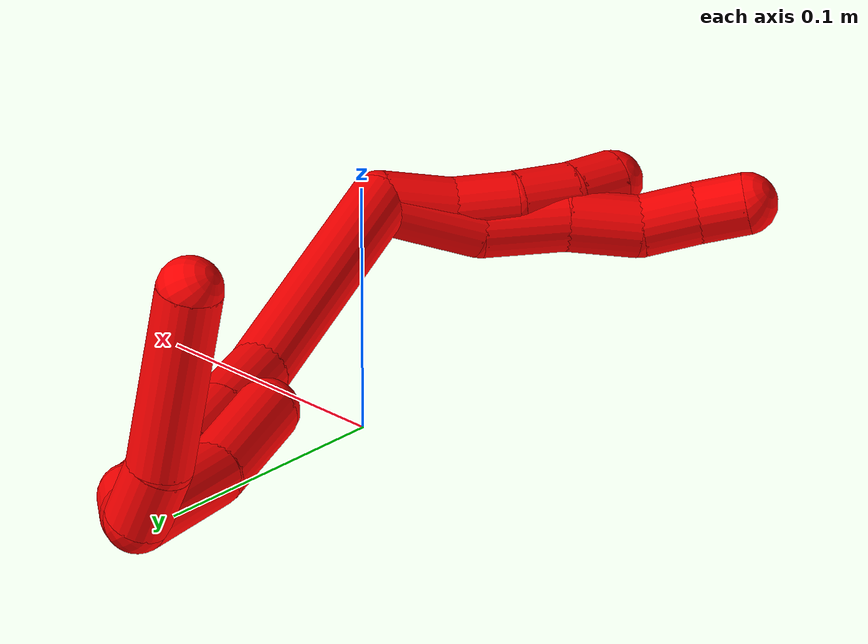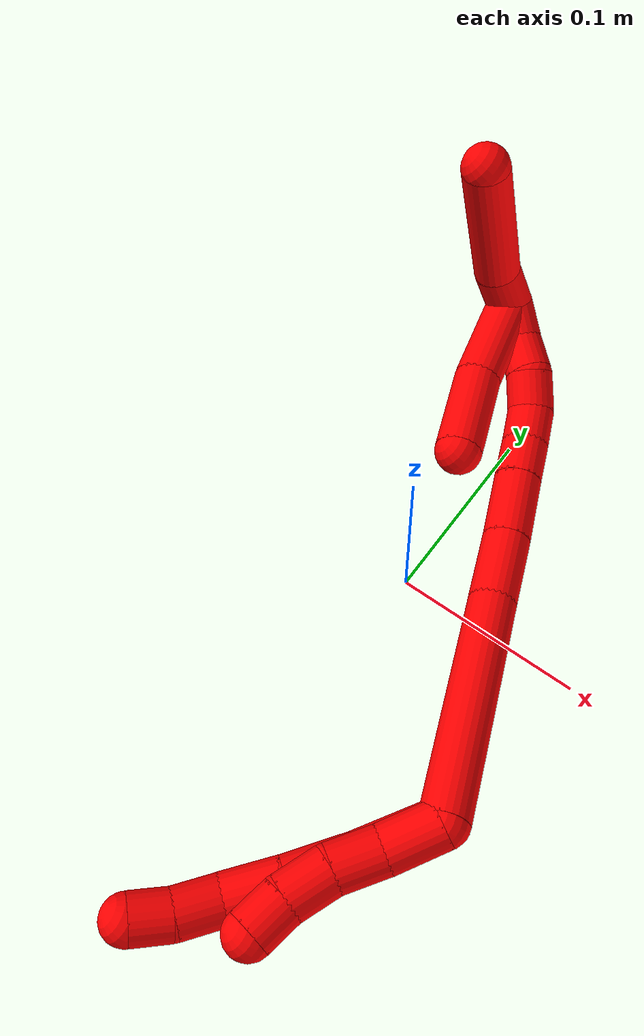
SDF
<sdf version="1.7">
 <world name="default">
  <model name="photoneo_s_sensor">
   <static>1</static>
   <pose>0 0 2 1.57079 1.57079 3.14159</pose>
   <link name="link">
    <inertial><mass>0.1</mass></inertial>
    <sensor name="sensor" type="depth">
     <update_rate>30</update_rate>
     <camera>
      <horizontal_fov>1.22</horizontal_fov>
      <image><width>1920</width><height>1200</height><format>B8G8R8</format></image>
      <clip><near>0.1</near><far>4</far></clip>
      <depth_camera><output>points</output></depth_camera>
     </camera>
     <plugin name="camera_plugin" filename="libgazebo_ros_depth_camera.so">
      <baseline>0.2</baseline>
      <alwaysOn>1</alwaysOn>
      <updateRate>0.0</updateRate>
      <cameraName>camera_ir</cameraName>
      <imageTopicName>/camera/color/image_raw</imageTopicName>
      <cameraInfoTopicName>/camera/color/camera_info</cameraInfoTopicName>
      <depthImageTopicName>/camera/depth/image_raw</depthImageTopicName>
      <depthImageCameraInfoTopicName>/camera/depth/camera_info</depthImageCameraInfoTopicName>
      <pointCloudTopicName>/camera/depth/points</pointCloudTopicName>
      <frameName>fr_optical</frameName>
      <pointCloudCutoff>0.1</pointCloudCutoff>
      <pointCloudCutoffMax>2.0</pointCloudCutoffMax>
      <distortionK1>0</distortionK1>
      <distortionK2>0</distortionK2>
      <distortionK3>0</distortionK3>
      <distortionT1>0</distortionT1>
      <distortionT2>0</distortionT2>
      <CxPrime>0</CxPrime>
      <Cx>0</Cx>
      <Cy>0</Cy>
      <focalLength>0</focalLength>
      <hackBaseline>0</hackBaseline>
     </plugin>
    </sensor>
   </link>
  </model>
  <model name="bin">
   <static>1</static>
   <link name="bottom">
    <collision name="collision-bottom">
     <pose>0 0 -0.01 0 -0 0</pose>
     <geometry><box><size>0.8 0.6 0.02</size></box></geometry>
     <surface>
      <friction><ode><mu>100</mu><mu2>100</mu2></ode></friction>
      <contact><collide_bitmask>65535</collide_bitmask></contact>
     </surface>
    </collision>
   </link>
   <link name="west_wall">
    <collision name="collision-west_wall">
     <pose>-0.41 0 0.1 0 -0 0</pose>
     <geometry><box><size>0.02 0.6 0.2</size></box></geometry>
     <surface>
      <friction><ode><mu>100</mu><mu2>100</mu2></ode></friction>
      <contact><collide_bitmask>65535</collide_bitmask></contact>
     </surface>
    </collision>
   </link>
   <link name="east_wall">
    <collision name="collision-east_wall">
     <pose>0.41 0 0.1 0 -0 0</pose>
     <geometry><box><size>0.02 0.6 0.2</size></box></geometry>
     <surface>
      <friction><ode><mu>100</mu><mu2>100</mu2></ode></friction>
      <contact><collide_bitmask>65535</collide_bitmask></contact>
     </surface>
    </collision>
   </link>
   <link name="south_wall">
    <collision name="collision-south_wall">
     <pose>0 -0.31 0.1 0 -0 0</pose>
     <geometry><box><size>0.8 0.02 0.2</size></box></geometry>
     <surface>
      <friction><ode><mu>100</mu><mu2>100</mu2></ode></friction>
      <contact><collide_bitmask>65535</collide_bitmask></contact>
     </surface>
    </collision>
   </link>
   <link name="north_wall">
    <collision name="collision-north_wall">
     <pose>0 0.31 0.1 0 -0 0</pose>
     <geometry><box><size>0.8 0.02 0.2</size></box></geometry>
     <surface>
      <friction><ode><mu>100</mu><mu2>100</mu2></ode></friction>
      <contact><collide_bitmask>65535</collide_bitmask></contact>
     </surface>
    </collision>
   </link>
  </model>
  <model name="2">
   <static>0</static>
   <link name="2">
    <collision name="collision-cylinder-e_1_2_8">
     <pose>-0.001607 -0.019561 0.008418 1.16441 -0.075303 -0.049587</pose>
     <geometry><cylinder><radius>0.0125</radius><length>0.042712</length></cylinder></geometry>
     <surface>
      <friction><ode><mu>1.16</mu><mu2>1.16</mu2><slip1>0</slip1><slip2>0</slip2></ode></friction>
      <contact><ode><kp>1e+06</kp><kd>1</kd><max_vel>0</max_vel><min_depth>0.001</min_depth></ode></contact>
     </surface>
    </collision>
    <visual name="visual-cylinder-e_1_2_8">
     <pose>-0.001607 -0.019561 0.008418 1.16441 -0.075303 -0.049587</pose>
     <geometry><cylinder><radius>0.0125</radius><length>0.042712</length></cylinder></geometry>
     <material><ambient>1 0 0 1</ambient></material>
    </visual>
    <collision name="collision-cylinder-e_2_8_9">
     <pose>-0.001496 -0.052231 0.027694 0.87905 0.100563 0.047316</pose>
     <geometry><cylinder><radius>0.0125</radius><length>0.034217</length></cylinder></geometry>
     <surface>
      <friction><ode><mu>1.16</mu><mu2>1.16</mu2><slip1>0</slip1><slip2>0</slip2></ode></friction>
      <contact><ode><kp>1e+06</kp><kd>1</kd><max_vel>0</max_vel><min_depth>0.001</min_depth></ode></contact>
     </surface>
    </collision>
    <visual name="visual-cylinder-e_2_8_9">
     <pose>-0.001496 -0.052231 0.027694 0.87905 0.100563 0.047316</pose>
     <geometry><cylinder><radius>0.0125</radius><length>0.034217</length></cylinder></geometry>
     <material><ambient>1 0 0 1</ambient></material>
    </visual>
    <collision name="collision-cylinder-e_3_9_10">
     <pose>-0.000375 -0.077344 0.046924 0.961768 -0.040763 -0.021269</pose>
     <geometry><cylinder><radius>0.0125</radius><length>0.029295</length></cylinder></geometry>
     <surface>
      <friction><ode><mu>1.16</mu><mu2>1.16</mu2><slip1>0</slip1><slip2>0</slip2></ode></friction>
      <contact><ode><kp>1e+06</kp><kd>1</kd><max_vel>0</max_vel><min_depth>0.001</min_depth></ode></contact>
     </surface>
    </collision>
    <visual name="visual-cylinder-e_3_9_10">
     <pose>-0.000375 -0.077344 0.046924 0.961768 -0.040763 -0.021269</pose>
     <geometry><cylinder><radius>0.0125</radius><length>0.029295</length></cylinder></geometry>
     <material><ambient>1 0 0 1</ambient></material>
    </visual>
    <collision name="collision-cylinder-e_4_10_11">
     <pose>0.001192 -0.097153 0.063892 0.737203 0.184291 0.071355</pose>
     <geometry><cylinder><radius>0.0125</radius><length>0.02362</length></cylinder></geometry>
     <surface>
      <friction><ode><mu>1.16</mu><mu2>1.16</mu2><slip1>0</slip1><slip2>0</slip2></ode></friction>
      <contact><ode><kp>1e+06</kp><kd>1</kd><max_vel>0</max_vel><min_depth>0.001</min_depth></ode></contact>
     </surface>
    </collision>
    <visual name="visual-cylinder-e_4_10_11">
     <pose>0.001192 -0.097153 0.063892 0.737203 0.184291 0.071355</pose>
     <geometry><cylinder><radius>0.0125</radius><length>0.02362</length></cylinder></geometry>
     <material><ambient>1 0 0 1</ambient></material>
    </visual>
    <collision name="collision-cylinder-e_5_11_6">
     <pose>0.003896 -0.110737 0.080727 0.611723 0.05351 0.0169</pose>
     <geometry><cylinder><radius>0.0125</radius><length>0.020156</length></cylinder></geometry>
     <surface>
      <friction><ode><mu>1.16</mu><mu2>1.16</mu2><slip1>0</slip1><slip2>0</slip2></ode></friction>
      <contact><ode><kp>1e+06</kp><kd>1</kd><max_vel>0</max_vel><min_depth>0.001</min_depth></ode></contact>
     </surface>
    </collision>
    <visual name="visual-cylinder-e_5_11_6">
     <pose>0.003896 -0.110737 0.080727 0.611723 0.05351 0.0169</pose>
     <geometry><cylinder><radius>0.0125</radius><length>0.020156</length></cylinder></geometry>
     <material><ambient>1 0 0 1</ambient></material>
    </visual>
    <collision name="collision-cylinder-e_1_2_12">
     <pose>0.000642 -0.013163 0.00691 1.08735 0.043149 0.026083</pose>
     <geometry><cylinder><radius>0.0125</radius><length>0.029761</length></cylinder></geometry>
     <surface>
      <friction><ode><mu>1.16</mu><mu2>1.16</mu2><slip1>0</slip1><slip2>0</slip2></ode></friction>
      <contact><ode><kp>1e+06</kp><kd>1</kd><max_vel>0</max_vel><min_depth>0.001</min_depth></ode></contact>
     </surface>
    </collision>
    <visual name="visual-cylinder-e_1_2_12">
     <pose>0.000642 -0.013163 0.00691 1.08735 0.043149 0.026083</pose>
     <geometry><cylinder><radius>0.0125</radius><length>0.029761</length></cylinder></geometry>
     <material><ambient>1 0 0 1</ambient></material>
    </visual>
    <collision name="collision-cylinder-e_2_12_13">
     <pose>0.002982 -0.036089 0.021792 0.886099 0.133955 0.063637</pose>
     <geometry><cylinder><radius>0.0125</radius><length>0.025436</length></cylinder></geometry>
     <surface>
      <friction><ode><mu>1.16</mu><mu2>1.16</mu2><slip1>0</slip1><slip2>0</slip2></ode></friction>
      <contact><ode><kp>1e+06</kp><kd>1</kd><max_vel>0</max_vel><min_depth>0.001</min_depth></ode></contact>
     </surface>
    </collision>
    <visual name="visual-cylinder-e_2_12_13">
     <pose>0.002982 -0.036089 0.021792 0.886099 0.133955 0.063637</pose>
     <geometry><cylinder><radius>0.0125</radius><length>0.025436</length></cylinder></geometry>
     <material><ambient>1 0 0 1</ambient></material>
    </visual>
    <collision name="collision-cylinder-e_3_13_14">
     <pose>0.008136 -0.055733 0.03561 1.03651 0.29235 0.167516</pose>
     <geometry><cylinder><radius>0.0125</radius><length>0.02398</length></cylinder></geometry>
     <surface>
      <friction><ode><mu>1.16</mu><mu2>1.16</mu2><slip1>0</slip1><slip2>0</slip2></ode></friction>
      <contact><ode><kp>1e+06</kp><kd>1</kd><max_vel>0</max_vel><min_depth>0.001</min_depth></ode></contact>
     </surface>
    </collision>
    <visual name="visual-cylinder-e_3_13_14">
     <pose>0.008136 -0.055733 0.03561 1.03651 0.29235 0.167516</pose>
     <geometry><cylinder><radius>0.0125</radius><length>0.02398</length></cylinder></geometry>
     <material><ambient>1 0 0 1</ambient></material>
    </visual>
    <collision name="collision-cylinder-e_4_14_5">
     <pose>0.016338 -0.074055 0.045282 1.14529 0.473337 0.308521</pose>
     <geometry><cylinder><radius>0.0125</radius><length>0.020823</length></cylinder></geometry>
     <surface>
      <friction><ode><mu>1.16</mu><mu2>1.16</mu2><slip1>0</slip1><slip2>0</slip2></ode></friction>
      <contact><ode><kp>1e+06</kp><kd>1</kd><max_vel>0</max_vel><min_depth>0.001</min_depth></ode></contact>
     </surface>
    </collision>
    <visual name="visual-cylinder-e_4_14_5">
     <pose>0.016338 -0.074055 0.045282 1.14529 0.473337 0.308521</pose>
     <geometry><cylinder><radius>0.0125</radius><length>0.020823</length></cylinder></geometry>
     <material><ambient>1 0 0 1</ambient></material>
    </visual>
    <collision name="collision-cylinder-e_1_2_15">
     <pose>-0.051708 0.031954 -0.004047 -1.69677 -1.01371 1.12435</pose>
     <geometry><cylinder><radius>0.0125</radius><length>0.121838</length></cylinder></geometry>
     <surface>
      <friction><ode><mu>1.16</mu><mu2>1.16</mu2><slip1>0</slip1><slip2>0</slip2></ode></friction>
      <contact><ode><kp>1e+06</kp><kd>1</kd><max_vel>0</max_vel><min_depth>0.001</min_depth></ode></contact>
     </surface>
    </collision>
    <visual name="visual-cylinder-e_1_2_15">
     <pose>-0.051708 0.031954 -0.004047 -1.69677 -1.01371 1.12435</pose>
     <geometry><cylinder><radius>0.0125</radius><length>0.121838</length></cylinder></geometry>
     <material><ambient>1 0 0 1</ambient></material>
    </visual>
    <collision name="collision-cylinder-e_2_15_16">
     <pose>-0.118002 0.075499 -0.007624 -1.53033 -0.89891 0.867633</pose>
     <geometry><cylinder><radius>0.0125</radius><length>0.037276</length></cylinder></geometry>
     <surface>
      <friction><ode><mu>1.16</mu><mu2>1.16</mu2><slip1>0</slip1><slip2>0</slip2></ode></friction>
      <contact><ode><kp>1e+06</kp><kd>1</kd><max_vel>0</max_vel><min_depth>0.001</min_depth></ode></contact>
     </surface>
    </collision>
    <visual name="visual-cylinder-e_2_15_16">
     <pose>-0.118002 0.075499 -0.007624 -1.53033 -0.89891 0.867633</pose>
     <geometry><cylinder><radius>0.0125</radius><length>0.037276</length></cylinder></geometry>
     <material><ambient>1 0 0 1</ambient></material>
    </visual>
    <collision name="collision-cylinder-e_3_16_17">
     <pose>-0.146626 0.09827 -0.006005 -1.46828 -0.895691 0.818123</pose>
     <geometry><cylinder><radius>0.0125</radius><length>0.035962</length></cylinder></geometry>
     <surface>
      <friction><ode><mu>1.16</mu><mu2>1.16</mu2><slip1>0</slip1><slip2>0</slip2></ode></friction>
      <contact><ode><kp>1e+06</kp><kd>1</kd><max_vel>0</max_vel><min_depth>0.001</min_depth></ode></contact>
     </surface>
    </collision>
    <visual name="visual-cylinder-e_3_16_17">
     <pose>-0.146626 0.09827 -0.006005 -1.46828 -0.895691 0.818123</pose>
     <geometry><cylinder><radius>0.0125</radius><length>0.035962</length></cylinder></geometry>
     <material><ambient>1 0 0 1</ambient></material>
    </visual>
    <collision name="collision-cylinder-e_4_17_18">
     <pose>-0.169441 0.116522 -0.004281 -1.48992 -0.890958 0.829609</pose>
     <geometry><cylinder><radius>0.0125</radius><length>0.022574</length></cylinder></geometry>
     <surface>
      <friction><ode><mu>1.16</mu><mu2>1.16</mu2><slip1>0</slip1><slip2>0</slip2></ode></friction>
      <contact><ode><kp>1e+06</kp><kd>1</kd><max_vel>0</max_vel><min_depth>0.001</min_depth></ode></contact>
     </surface>
    </collision>
    <visual name="visual-cylinder-e_4_17_18">
     <pose>-0.169441 0.116522 -0.004281 -1.48992 -0.890958 0.829609</pose>
     <geometry><cylinder><radius>0.0125</radius><length>0.022574</length></cylinder></geometry>
     <material><ambient>1 0 0 1</ambient></material>
    </visual>
    <collision name="collision-cylinder-e_5_18_19">
     <pose>-0.185245 0.130526 -0.002013 -1.33094 -0.777671 0.622259</pose>
     <geometry><cylinder><radius>0.0125</radius><length>0.02003</length></cylinder></geometry>
     <surface>
      <friction><ode><mu>1.16</mu><mu2>1.16</mu2><slip1>0</slip1><slip2>0</slip2></ode></friction>
      <contact><ode><kp>1e+06</kp><kd>1</kd><max_vel>0</max_vel><min_depth>0.001</min_depth></ode></contact>
     </surface>
    </collision>
    <visual name="visual-cylinder-e_5_18_19">
     <pose>-0.185245 0.130526 -0.002013 -1.33094 -0.777671 0.622259</pose>
     <geometry><cylinder><radius>0.0125</radius><length>0.02003</length></cylinder></geometry>
     <material><ambient>1 0 0 1</ambient></material>
    </visual>
    <collision name="collision-cylinder-e_6_19_20">
     <pose>-0.198359 0.144152 0.004599 -0.937304 -0.632465 0.328335</pose>
     <geometry><cylinder><radius>0.0125</radius><length>0.020595</length></cylinder></geometry>
     <surface>
      <friction><ode><mu>1.16</mu><mu2>1.16</mu2><slip1>0</slip1><slip2>0</slip2></ode></friction>
      <contact><ode><kp>1e+06</kp><kd>1</kd><max_vel>0</max_vel><min_depth>0.001</min_depth></ode></contact>
     </surface>
    </collision>
    <visual name="visual-cylinder-e_6_19_20">
     <pose>-0.198359 0.144152 0.004599 -0.937304 -0.632465 0.328335</pose>
     <geometry><cylinder><radius>0.0125</radius><length>0.020595</length></cylinder></geometry>
     <material><ambient>1 0 0 1</ambient></material>
    </visual>
    <collision name="collision-cylinder-e_7_20_21">
     <pose>-0.212546 0.154779 0.014173 -0.701271 -0.925662 0.36103</pose>
     <geometry><cylinder><radius>0.0125</radius><length>0.020273</length></cylinder></geometry>
     <surface>
      <friction><ode><mu>1.16</mu><mu2>1.16</mu2><slip1>0</slip1><slip2>0</slip2></ode></friction>
      <contact><ode><kp>1e+06</kp><kd>1</kd><max_vel>0</max_vel><min_depth>0.001</min_depth></ode></contact>
     </surface>
    </collision>
    <visual name="visual-cylinder-e_7_20_21">
     <pose>-0.212546 0.154779 0.014173 -0.701271 -0.925662 0.36103</pose>
     <geometry><cylinder><radius>0.0125</radius><length>0.020273</length></cylinder></geometry>
     <material><ambient>1 0 0 1</ambient></material>
    </visual>
    <collision name="collision-cylinder-e_8_21_1">
     <pose>-0.227107 0.164252 0.025357 -0.70378 -0.64654 0.244792</pose>
     <geometry><cylinder><radius>0.0125</radius><length>0.021451</length></cylinder></geometry>
     <surface>
      <friction><ode><mu>1.16</mu><mu2>1.16</mu2><slip1>0</slip1><slip2>0</slip2></ode></friction>
      <contact><ode><kp>1e+06</kp><kd>1</kd><max_vel>0</max_vel><min_depth>0.001</min_depth></ode></contact>
     </surface>
    </collision>
    <visual name="visual-cylinder-e_8_21_1">
     <pose>-0.227107 0.164252 0.025357 -0.70378 -0.64654 0.244792</pose>
     <geometry><cylinder><radius>0.0125</radius><length>0.021451</length></cylinder></geometry>
     <material><ambient>1 0 0 1</ambient></material>
    </visual>
    <collision name="collision-cylinder-e_1_1_22">
     <pose>-0.216395 0.151069 0.032842 1.51961 0.741597 0.707661</pose>
     <geometry><cylinder><radius>0.0125</radius><length>0.050847</length></cylinder></geometry>
     <surface>
      <friction><ode><mu>1.16</mu><mu2>1.16</mu2><slip1>0</slip1><slip2>0</slip2></ode></friction>
      <contact><ode><kp>1e+06</kp><kd>1</kd><max_vel>0</max_vel><min_depth>0.001</min_depth></ode></contact>
     </surface>
    </collision>
    <visual name="visual-cylinder-e_1_1_22">
     <pose>-0.216395 0.151069 0.032842 1.51961 0.741597 0.707661</pose>
     <geometry><cylinder><radius>0.0125</radius><length>0.050847</length></cylinder></geometry>
     <material><ambient>1 0 0 1</ambient></material>
    </visual>
    <collision name="collision-cylinder-e_2_22_4">
     <pose>-0.179421 0.117793 0.034103 1.55009 0.936903 0.920317</pose>
     <geometry><cylinder><radius>0.0125</radius><length>0.049153</length></cylinder></geometry>
     <surface>
      <friction><ode><mu>1.16</mu><mu2>1.16</mu2><slip1>0</slip1><slip2>0</slip2></ode></friction>
      <contact><ode><kp>1e+06</kp><kd>1</kd><max_vel>0</max_vel><min_depth>0.001</min_depth></ode></contact>
     </surface>
    </collision>
    <visual name="visual-cylinder-e_2_22_4">
     <pose>-0.179421 0.117793 0.034103 1.55009 0.936903 0.920317</pose>
     <geometry><cylinder><radius>0.0125</radius><length>0.049153</length></cylinder></geometry>
     <material><ambient>1 0 0 1</ambient></material>
    </visual>
    <collision name="collision-cylinder-e_1_1_23">
     <pose>-0.230152 0.174949 0.043451 -0.419395 0.26344 -0.056379</pose>
     <geometry><cylinder><radius>0.0125</radius><length>0.026237</length></cylinder></geometry>
     <surface>
      <friction><ode><mu>1.16</mu><mu2>1.16</mu2><slip1>0</slip1><slip2>0</slip2></ode></friction>
      <contact><ode><kp>1e+06</kp><kd>1</kd><max_vel>0</max_vel><min_depth>0.001</min_depth></ode></contact>
     </surface>
    </collision>
    <visual name="visual-cylinder-e_1_1_23">
     <pose>-0.230152 0.174949 0.043451 -0.419395 0.26344 -0.056379</pose>
     <geometry><cylinder><radius>0.0125</radius><length>0.026237</length></cylinder></geometry>
     <material><ambient>1 0 0 1</ambient></material>
    </visual>
    <collision name="collision-cylinder-e_2_23_3">
     <pose>-0.210979 0.198214 0.083021 -0.574042 0.441433 -0.132263</pose>
     <geometry><cylinder><radius>0.0125</radius><length>0.073763</length></cylinder></geometry>
     <surface>
      <friction><ode><mu>1.16</mu><mu2>1.16</mu2><slip1>0</slip1><slip2>0</slip2></ode></friction>
      <contact><ode><kp>1e+06</kp><kd>1</kd><max_vel>0</max_vel><min_depth>0.001</min_depth></ode></contact>
     </surface>
    </collision>
    <visual name="visual-cylinder-e_2_23_3">
     <pose>-0.210979 0.198214 0.083021 -0.574042 0.441433 -0.132263</pose>
     <geometry><cylinder><radius>0.0125</radius><length>0.073763</length></cylinder></geometry>
     <material><ambient>1 0 0 1</ambient></material>
    </visual>
    <collision name="collision-sphere-3">
     <pose>-0.195222 0.216322 0.111022 0 -0 0</pose>
     <geometry><sphere><radius>0.0125</radius></sphere></geometry>
     <surface>
      <friction><ode><mu>1.16</mu><mu2>1.16</mu2><slip1>0</slip1><slip2>0</slip2></ode></friction>
      <contact><ode><kp>1e+06</kp><kd>1</kd><max_vel>0</max_vel><min_depth>0.001</min_depth></ode></contact>
     </surface>
    </collision>
    <visual name="visual-sphere-3">
     <pose>-0.195222 0.216322 0.111022 0 -0 0</pose>
     <geometry><sphere><radius>0.0125</radius></sphere></geometry>
     <material><ambient>1 0 0 1</ambient></material>
    </visual>
    <collision name="collision-sphere-23">
     <pose>-0.226736 0.180107 0.05502 0 -0 0</pose>
     <geometry><sphere><radius>0.0125</radius></sphere></geometry>
     <surface>
      <friction><ode><mu>1.16</mu><mu2>1.16</mu2><slip1>0</slip1><slip2>0</slip2></ode></friction>
      <contact><ode><kp>1e+06</kp><kd>1</kd><max_vel>0</max_vel><min_depth>0.001</min_depth></ode></contact>
     </surface>
    </collision>
    <visual name="visual-sphere-23">
     <pose>-0.226736 0.180107 0.05502 0 -0 0</pose>
     <geometry><sphere><radius>0.0125</radius></sphere></geometry>
     <material><ambient>1 0 0 1</ambient></material>
    </visual>
    <collision name="collision-sphere-4">
     <pose>-0.159619 0.10324 0.034404 0 -0 0</pose>
     <geometry><sphere><radius>0.0125</radius></sphere></geometry>
     <surface>
      <friction><ode><mu>1.16</mu><mu2>1.16</mu2><slip1>0</slip1><slip2>0</slip2></ode></friction>
      <contact><ode><kp>1e+06</kp><kd>1</kd><max_vel>0</max_vel><min_depth>0.001</min_depth></ode></contact>
     </surface>
    </collision>
    <visual name="visual-sphere-4">
     <pose>-0.159619 0.10324 0.034404 0 -0 0</pose>
     <geometry><sphere><radius>0.0125</radius></sphere></geometry>
     <material><ambient>1 0 0 1</ambient></material>
    </visual>
    <collision name="collision-sphere-22">
     <pose>-0.199223 0.132346 0.033801 0 -0 0</pose>
     <geometry><sphere><radius>0.0125</radius></sphere></geometry>
     <surface>
      <friction><ode><mu>1.16</mu><mu2>1.16</mu2><slip1>0</slip1><slip2>0</slip2></ode></friction>
      <contact><ode><kp>1e+06</kp><kd>1</kd><max_vel>0</max_vel><min_depth>0.001</min_depth></ode></contact>
     </surface>
    </collision>
    <visual name="visual-sphere-22">
     <pose>-0.199223 0.132346 0.033801 0 -0 0</pose>
     <geometry><sphere><radius>0.0125</radius></sphere></geometry>
     <material><ambient>1 0 0 1</ambient></material>
    </visual>
    <collision name="collision-sphere-1">
     <pose>-0.233568 0.169791 0.031883 0 -0 0</pose>
     <geometry><sphere><radius>0.0125</radius></sphere></geometry>
     <surface>
      <friction><ode><mu>1.16</mu><mu2>1.16</mu2><slip1>0</slip1><slip2>0</slip2></ode></friction>
      <contact><ode><kp>1e+06</kp><kd>1</kd><max_vel>0</max_vel><min_depth>0.001</min_depth></ode></contact>
     </surface>
    </collision>
    <visual name="visual-sphere-1">
     <pose>-0.233568 0.169791 0.031883 0 -0 0</pose>
     <geometry><sphere><radius>0.0125</radius></sphere></geometry>
     <material><ambient>1 0 0 1</ambient></material>
    </visual>
    <collision name="collision-sphere-21">
     <pose>-0.220646 0.158712 0.01883 0 -0 0</pose>
     <geometry><sphere><radius>0.0125</radius></sphere></geometry>
     <surface>
      <friction><ode><mu>1.16</mu><mu2>1.16</mu2><slip1>0</slip1><slip2>0</slip2></ode></friction>
      <contact><ode><kp>1e+06</kp><kd>1</kd><max_vel>0</max_vel><min_depth>0.001</min_depth></ode></contact>
     </surface>
    </collision>
    <visual name="visual-sphere-21">
     <pose>-0.220646 0.158712 0.01883 0 -0 0</pose>
     <geometry><sphere><radius>0.0125</radius></sphere></geometry>
     <material><ambient>1 0 0 1</ambient></material>
    </visual>
    <collision name="collision-sphere-6">
     <pose>0.004435 -0.116516 0.088965 0 -0 0</pose>
     <geometry><sphere><radius>0.0125</radius></sphere></geometry>
     <surface>
      <friction><ode><mu>1.16</mu><mu2>1.16</mu2><slip1>0</slip1><slip2>0</slip2></ode></friction>
      <contact><ode><kp>1e+06</kp><kd>1</kd><max_vel>0</max_vel><min_depth>0.001</min_depth></ode></contact>
     </surface>
    </collision>
    <visual name="visual-sphere-6">
     <pose>0.004435 -0.116516 0.088965 0 -0 0</pose>
     <geometry><sphere><radius>0.0125</radius></sphere></geometry>
     <material><ambient>1 0 0 1</ambient></material>
    </visual>
    <collision name="collision-sphere-11">
     <pose>0.003357 -0.104957 0.072488 0 -0 0</pose>
     <geometry><sphere><radius>0.0125</radius></sphere></geometry>
     <surface>
      <friction><ode><mu>1.16</mu><mu2>1.16</mu2><slip1>0</slip1><slip2>0</slip2></ode></friction>
      <contact><ode><kp>1e+06</kp><kd>1</kd><max_vel>0</max_vel><min_depth>0.001</min_depth></ode></contact>
     </surface>
    </collision>
    <visual name="visual-sphere-11">
     <pose>0.003357 -0.104957 0.072488 0 -0 0</pose>
     <geometry><sphere><radius>0.0125</radius></sphere></geometry>
     <material><ambient>1 0 0 1</ambient></material>
    </visual>
    <collision name="collision-sphere-10">
     <pose>-0.000972 -0.089348 0.055297 0 -0 0</pose>
     <geometry><sphere><radius>0.0125</radius></sphere></geometry>
     <surface>
      <friction><ode><mu>1.16</mu><mu2>1.16</mu2><slip1>0</slip1><slip2>0</slip2></ode></friction>
      <contact><ode><kp>1e+06</kp><kd>1</kd><max_vel>0</max_vel><min_depth>0.001</min_depth></ode></contact>
     </surface>
    </collision>
    <visual name="visual-sphere-10">
     <pose>-0.000972 -0.089348 0.055297 0 -0 0</pose>
     <geometry><sphere><radius>0.0125</radius></sphere></geometry>
     <material><ambient>1 0 0 1</ambient></material>
    </visual>
    <collision name="collision-sphere-9">
     <pose>0.000222 -0.06534 0.038552 0 -0 0</pose>
     <geometry><sphere><radius>0.0125</radius></sphere></geometry>
     <surface>
      <friction><ode><mu>1.16</mu><mu2>1.16</mu2><slip1>0</slip1><slip2>0</slip2></ode></friction>
      <contact><ode><kp>1e+06</kp><kd>1</kd><max_vel>0</max_vel><min_depth>0.001</min_depth></ode></contact>
     </surface>
    </collision>
    <visual name="visual-sphere-9">
     <pose>0.000222 -0.06534 0.038552 0 -0 0</pose>
     <geometry><sphere><radius>0.0125</radius></sphere></geometry>
     <material><ambient>1 0 0 1</ambient></material>
    </visual>
    <collision name="collision-sphere-2">
     <geometry><sphere><radius>0.0125</radius></sphere></geometry>
     <surface>
      <friction><ode><mu>1.16</mu><mu2>1.16</mu2><slip1>0</slip1><slip2>0</slip2></ode></friction>
      <contact><ode><kp>1e+06</kp><kd>1</kd><max_vel>0</max_vel><min_depth>0.001</min_depth></ode></contact>
     </surface>
    </collision>
    <visual name="visual-sphere-2">
     <geometry><sphere><radius>0.0125</radius></sphere></geometry>
     <material><ambient>1 0 0 1</ambient></material>
    </visual>
    <collision name="collision-sphere-19">
     <pose>-0.192272 0.137458 -0.000318 0 -0 0</pose>
     <geometry><sphere><radius>0.0125</radius></sphere></geometry>
     <surface>
      <friction><ode><mu>1.16</mu><mu2>1.16</mu2><slip1>0</slip1><slip2>0</slip2></ode></friction>
      <contact><ode><kp>1e+06</kp><kd>1</kd><max_vel>0</max_vel><min_depth>0.001</min_depth></ode></contact>
     </surface>
    </collision>
    <visual name="visual-sphere-19">
     <pose>-0.192272 0.137458 -0.000318 0 -0 0</pose>
     <geometry><sphere><radius>0.0125</radius></sphere></geometry>
     <material><ambient>1 0 0 1</ambient></material>
    </visual>
    <collision name="collision-sphere-8">
     <pose>-0.003213 -0.039122 0.016836 0 -0 0</pose>
     <geometry><sphere><radius>0.0125</radius></sphere></geometry>
     <surface>
      <friction><ode><mu>1.16</mu><mu2>1.16</mu2><slip1>0</slip1><slip2>0</slip2></ode></friction>
      <contact><ode><kp>1e+06</kp><kd>1</kd><max_vel>0</max_vel><min_depth>0.001</min_depth></ode></contact>
     </surface>
    </collision>
    <visual name="visual-sphere-8">
     <pose>-0.003213 -0.039122 0.016836 0 -0 0</pose>
     <geometry><sphere><radius>0.0125</radius></sphere></geometry>
     <material><ambient>1 0 0 1</ambient></material>
    </visual>
    <collision name="collision-sphere-12">
     <pose>0.001284 -0.026325 0.013821 0 -0 0</pose>
     <geometry><sphere><radius>0.0125</radius></sphere></geometry>
     <surface>
      <friction><ode><mu>1.16</mu><mu2>1.16</mu2><slip1>0</slip1><slip2>0</slip2></ode></friction>
      <contact><ode><kp>1e+06</kp><kd>1</kd><max_vel>0</max_vel><min_depth>0.001</min_depth></ode></contact>
     </surface>
    </collision>
    <visual name="visual-sphere-12">
     <pose>0.001284 -0.026325 0.013821 0 -0 0</pose>
     <geometry><sphere><radius>0.0125</radius></sphere></geometry>
     <material><ambient>1 0 0 1</ambient></material>
    </visual>
    <collision name="collision-sphere-13">
     <pose>0.004681 -0.045852 0.029764 0 -0 0</pose>
     <geometry><sphere><radius>0.0125</radius></sphere></geometry>
     <surface>
      <friction><ode><mu>1.16</mu><mu2>1.16</mu2><slip1>0</slip1><slip2>0</slip2></ode></friction>
      <contact><ode><kp>1e+06</kp><kd>1</kd><max_vel>0</max_vel><min_depth>0.001</min_depth></ode></contact>
     </surface>
    </collision>
    <visual name="visual-sphere-13">
     <pose>0.004681 -0.045852 0.029764 0 -0 0</pose>
     <geometry><sphere><radius>0.0125</radius></sphere></geometry>
     <material><ambient>1 0 0 1</ambient></material>
    </visual>
    <collision name="collision-sphere-14">
     <pose>0.011592 -0.065614 0.041457 0 -0 0</pose>
     <geometry><sphere><radius>0.0125</radius></sphere></geometry>
     <surface>
      <friction><ode><mu>1.16</mu><mu2>1.16</mu2><slip1>0</slip1><slip2>0</slip2></ode></friction>
      <contact><ode><kp>1e+06</kp><kd>1</kd><max_vel>0</max_vel><min_depth>0.001</min_depth></ode></contact>
     </surface>
    </collision>
    <visual name="visual-sphere-14">
     <pose>0.011592 -0.065614 0.041457 0 -0 0</pose>
     <geometry><sphere><radius>0.0125</radius></sphere></geometry>
     <material><ambient>1 0 0 1</ambient></material>
    </visual>
    <collision name="collision-sphere-5">
     <pose>0.021084 -0.082495 0.049107 0 -0 0</pose>
     <geometry><sphere><radius>0.0125</radius></sphere></geometry>
     <surface>
      <friction><ode><mu>1.16</mu><mu2>1.16</mu2><slip1>0</slip1><slip2>0</slip2></ode></friction>
      <contact><ode><kp>1e+06</kp><kd>1</kd><max_vel>0</max_vel><min_depth>0.001</min_depth></ode></contact>
     </surface>
    </collision>
    <visual name="visual-sphere-5">
     <pose>0.021084 -0.082495 0.049107 0 -0 0</pose>
     <geometry><sphere><radius>0.0125</radius></sphere></geometry>
     <material><ambient>1 0 0 1</ambient></material>
    </visual>
    <collision name="collision-sphere-15">
     <pose>-0.103415 0.063907 -0.008093 0 -0 0</pose>
     <geometry><sphere><radius>0.0125</radius></sphere></geometry>
     <surface>
      <friction><ode><mu>1.16</mu><mu2>1.16</mu2><slip1>0</slip1><slip2>0</slip2></ode></friction>
      <contact><ode><kp>1e+06</kp><kd>1</kd><max_vel>0</max_vel><min_depth>0.001</min_depth></ode></contact>
     </surface>
    </collision>
    <visual name="visual-sphere-15">
     <pose>-0.103415 0.063907 -0.008093 0 -0 0</pose>
     <geometry><sphere><radius>0.0125</radius></sphere></geometry>
     <material><ambient>1 0 0 1</ambient></material>
    </visual>
    <collision name="collision-sphere-16">
     <pose>-0.132589 0.087091 -0.007155 0 -0 0</pose>
     <geometry><sphere><radius>0.0125</radius></sphere></geometry>
     <surface>
      <friction><ode><mu>1.16</mu><mu2>1.16</mu2><slip1>0</slip1><slip2>0</slip2></ode></friction>
      <contact><ode><kp>1e+06</kp><kd>1</kd><max_vel>0</max_vel><min_depth>0.001</min_depth></ode></contact>
     </surface>
    </collision>
    <visual name="visual-sphere-16">
     <pose>-0.132589 0.087091 -0.007155 0 -0 0</pose>
     <geometry><sphere><radius>0.0125</radius></sphere></geometry>
     <material><ambient>1 0 0 1</ambient></material>
    </visual>
    <collision name="collision-sphere-17">
     <pose>-0.160663 0.109449 -0.004855 0 -0 0</pose>
     <geometry><sphere><radius>0.0125</radius></sphere></geometry>
     <surface>
      <friction><ode><mu>1.16</mu><mu2>1.16</mu2><slip1>0</slip1><slip2>0</slip2></ode></friction>
      <contact><ode><kp>1e+06</kp><kd>1</kd><max_vel>0</max_vel><min_depth>0.001</min_depth></ode></contact>
     </surface>
    </collision>
    <visual name="visual-sphere-17">
     <pose>-0.160663 0.109449 -0.004855 0 -0 0</pose>
     <geometry><sphere><radius>0.0125</radius></sphere></geometry>
     <material><ambient>1 0 0 1</ambient></material>
    </visual>
    <collision name="collision-sphere-18">
     <pose>-0.178219 0.123594 -0.003708 0 -0 0</pose>
     <geometry><sphere><radius>0.0125</radius></sphere></geometry>
     <surface>
      <friction><ode><mu>1.16</mu><mu2>1.16</mu2><slip1>0</slip1><slip2>0</slip2></ode></friction>
      <contact><ode><kp>1e+06</kp><kd>1</kd><max_vel>0</max_vel><min_depth>0.001</min_depth></ode></contact>
     </surface>
    </collision>
    <visual name="visual-sphere-18">
     <pose>-0.178219 0.123594 -0.003708 0 -0 0</pose>
     <geometry><sphere><radius>0.0125</radius></sphere></geometry>
     <material><ambient>1 0 0 1</ambient></material>
    </visual>
    <collision name="collision-sphere-20">
     <pose>-0.204447 0.150847 0.009516 0 -0 0</pose>
     <geometry><sphere><radius>0.0125</radius></sphere></geometry>
     <surface>
      <friction><ode><mu>1.16</mu><mu2>1.16</mu2><slip1>0</slip1><slip2>0</slip2></ode></friction>
      <contact><ode><kp>1e+06</kp><kd>1</kd><max_vel>0</max_vel><min_depth>0.001</min_depth></ode></contact>
     </surface>
    </collision>
    <visual name="visual-sphere-20">
     <pose>-0.204447 0.150847 0.009516 0 -0 0</pose>
     <geometry><sphere><radius>0.0125</radius></sphere></geometry>
     <material><ambient>1 0 0 1</ambient></material>
    </visual>
    <inertial>
     <pose>-0.103453 0.058927 0.025041 0 -0 0</pose>
     <mass>0.75</mass>
     <inertia>
      <ixx>0.000202</ixx>
      <ixy>0</ixy>
      <ixz>0</ixz>
      <iyy>0.000272</iyy>
      <iyz>0</iyz>
      <izz>5.8e-05</izz>
     </inertia>
    </inertial>
   </link>
   <pose>0.089451 -0.100381 0.030398 0.750318 -0.515368 -0.740925</pose>
  </model>
 </world>
</sdf>
